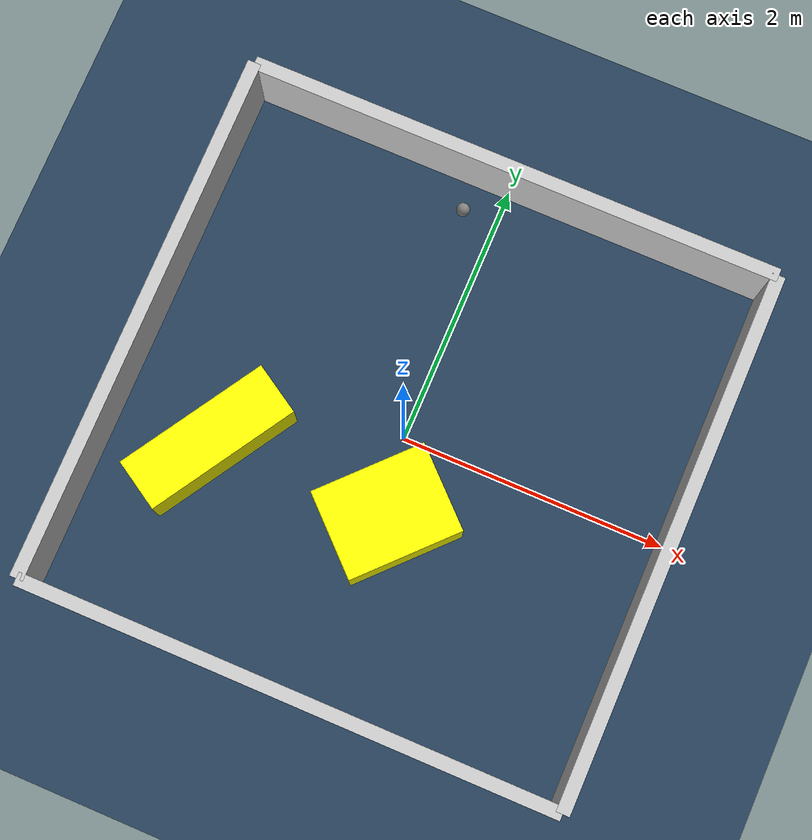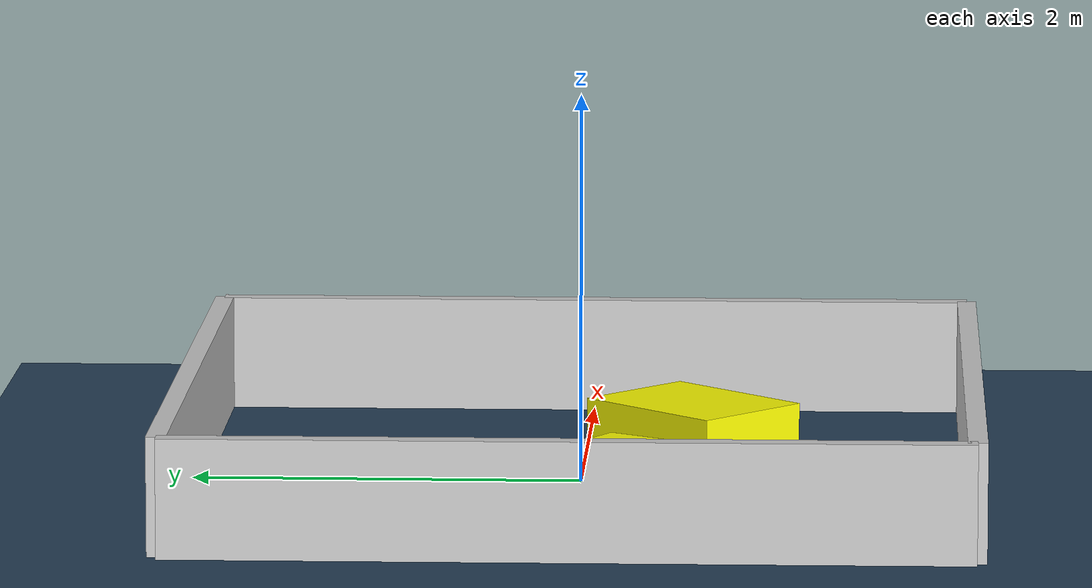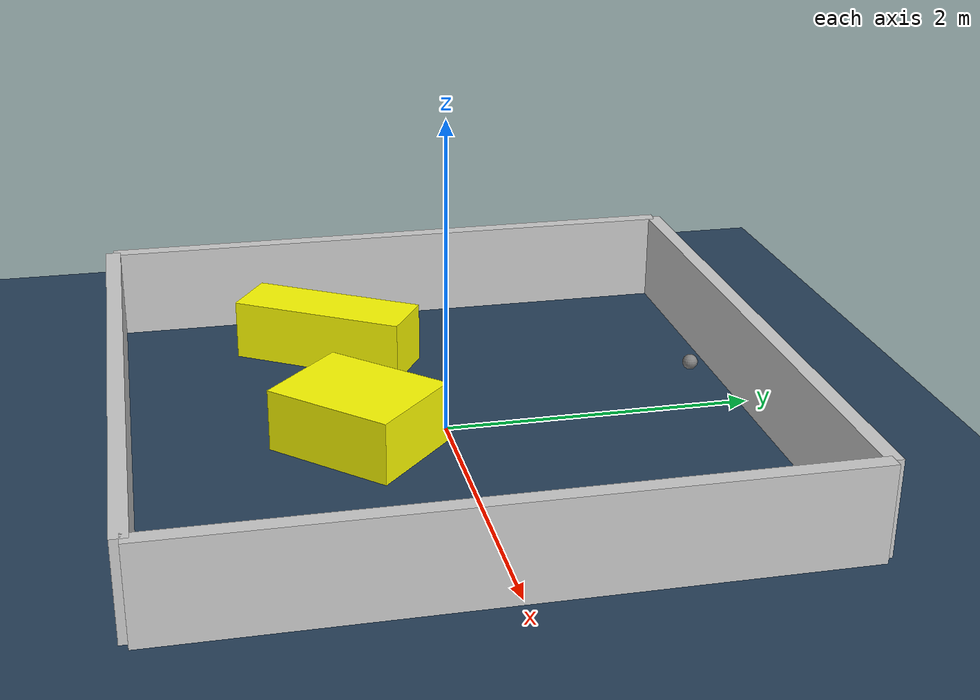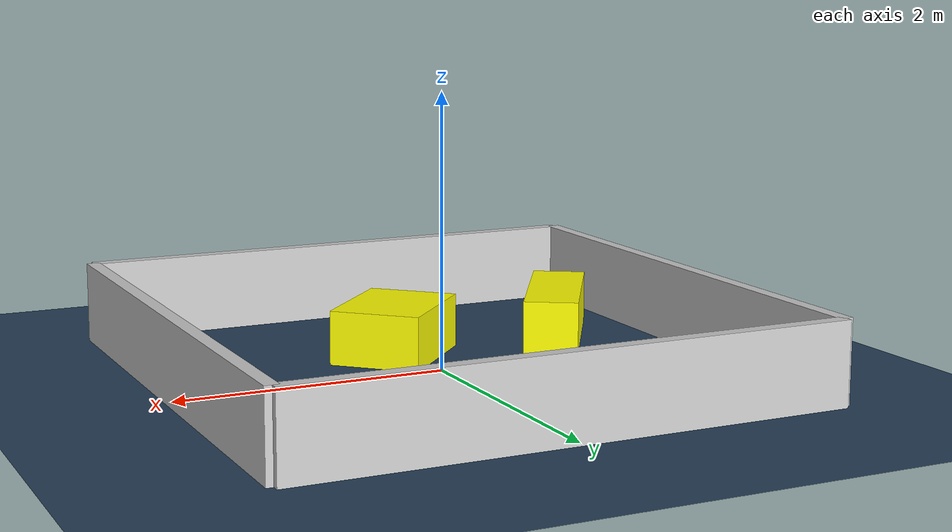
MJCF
<?xml version="1.0" ?>
<mujoco model="generated_environment">
  <option timestep="0.01" integrator="RK4" cone="elliptic"/>
  <default>
    <geom density="1"/>
  </default>
  <asset>
    <texture builtin="gradient" height="3072" rgb1="0.3 0.5 0.7" rgb2="0 0 0" type="skybox" width="512"/>
    <texture builtin="checker" height="300" mark="edge" markrgb="0.8 0.8 0.8" name="groundplane" rgb1="0.2 0.3 0.4" rgb2="0.1 0.2 0.3" type="2d" width="300"/>
    <material name="groundplane" reflectance="0.2" texrepeat="5 5" texture="groundplane" texuniform="true"/>
    <material name="robot" rgba="0.0 1.0 0.0 1"/>
  </asset>
  <worldbody>
    <light dir="0 0 -1" directional="true" pos="0 0 1.5"/>
    <geom condim="4" friction="1.0 0.005 0.001" material="groundplane" name="floor" size="0 0 0.05" type="plane"/>
    <body name="walls">
      <geom name="wall_1" condim="4" pos="-2.0 0.0 0.3" rgba="0.800000011920929 0.800000011920929 0.800000011920929 1.0" size="0.05 2.0 0.3" type="box"/>
      <geom name="wall_2" condim="4" pos="2.0 0.0 0.3" rgba="0.800000011920929 0.800000011920929 0.800000011920929 1.0" size="0.05 2.0 0.3" type="box"/>
      <geom name="wall_3" condim="4" pos="0.0 -2.0 0.3" rgba="0.800000011920929 0.800000011920929 0.800000011920929 1.0" size="2.0 0.05 0.3" type="box"/>
      <geom name="wall_4" condim="4" pos="0.0 2.0 0.3" rgba="0.800000011920929 0.800000011920929 0.800000011920929 1.0" size="2.0 0.05 0.3" type="box"/>
    </body>
    <body name="robot">
      <joint name="joint_x" type="slide" pos="0 0 0" axis="1 0 0"/>
      <joint name="joint_y" type="slide" pos="0 0 0" axis="0 1 0"/>
      <geom name="robot" type="sphere" pos="-0.24700743089421318 1.6938925664975755 0.2" size="0.05" mass="5." friction="1.0 0.005 0.0001" condim="4"/>
      <site name="sensor_ball"/>
    </body>
    <body name="obstacle_1_movable">
      <geom name="obstacle_1_movable" condim="4" pos="0.12012431764730636 -0.5713658373455406 0.2" euler="0 0 226.48761551921095" friction="1.0 0.005 0.001" rgba="1 1 0 1" size="0.4321276796207655 0.33872019012756016 0.2" type="box" mass="0.1"/>
      <joint type="free"/>
    </body>
    <body name="obstacle_2_movable">
      <geom name="obstacle_2_movable" condim="4" pos="-1.2404528283156853 -0.5811527711946434 0.2" euler="0 0 328.20431454213013" friction="1.0 0.005 0.001" rgba="1 1 0 1" size="0.20317317672383406 0.597227406052851 0.2" type="box" mass="0.1"/>
      <joint type="free"/>
    </body>
  </worldbody>
  <actuator>
    <motor name="actuator_x" joint="joint_x" gear="1" ctrlrange="-1 1"/>
    <motor name="actuator_y" joint="joint_y" gear="1" ctrlrange="-1 1"/>
  </actuator>
</mujoco>
